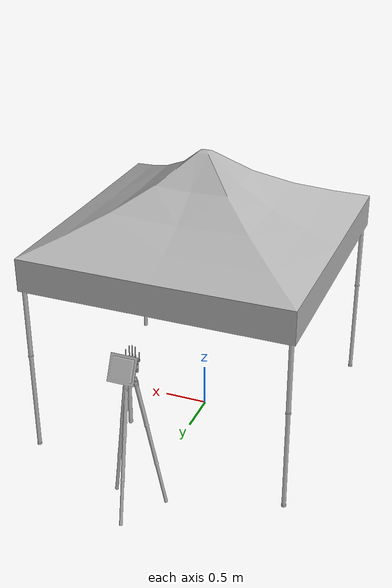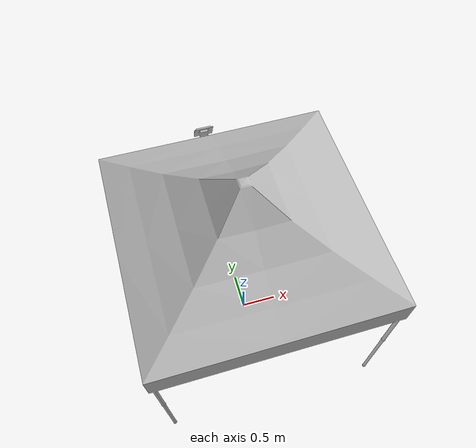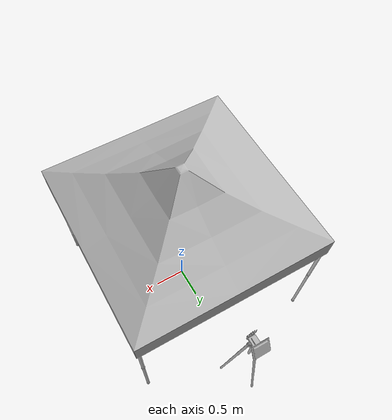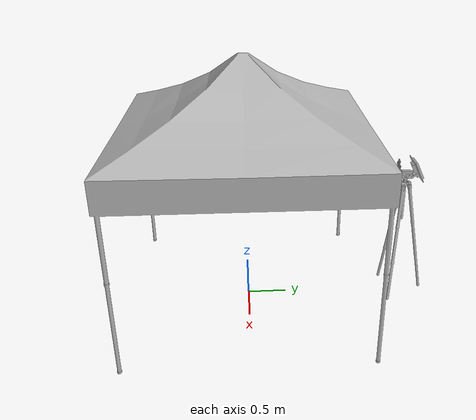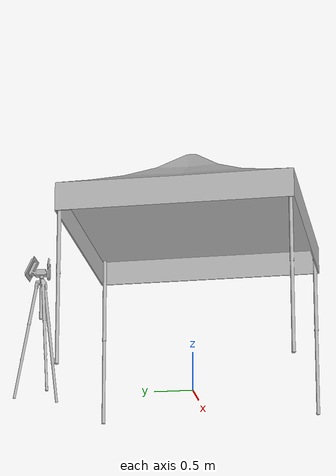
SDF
<?xml version='1.0' ?>
<sdf version="1.6">
    <model name="BaseStation">
        <static>true</static>
        <link name="link">
            <collision name="collision_tent">
                <geometry>
                    <mesh>
                        <uri>meshes/tent.dae</uri>
                    </mesh>
                </geometry>
            </collision>
            <collision name="collision_antenna">
                <pose>0 2 0 0 0 0</pose>
                <geometry>
                    <mesh>
                        <uri>meshes/antenna.dae</uri>
                    </mesh>
                </geometry>
            </collision>
            <visual name="visual_tent">
                <geometry>
                    <mesh>
                        <uri>meshes/tent.dae</uri>
                    </mesh>
                </geometry>
            </visual>
            <visual name="visual_antenna">
                <pose>0 2 0 0 0 0</pose>
                <geometry>
                    <mesh>
                        <uri>meshes/antenna.dae</uri>
                    </mesh>
                </geometry>
            </visual>
        </link>
    </model>
</sdf>
